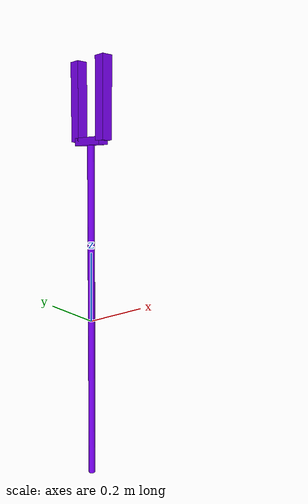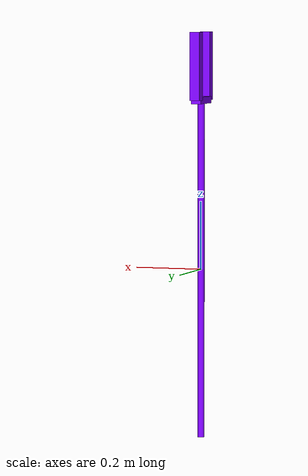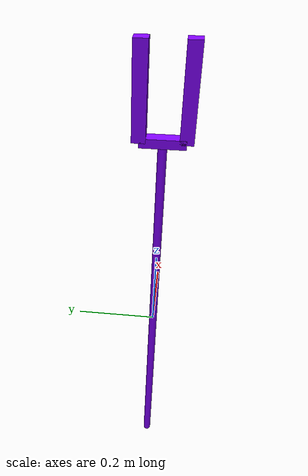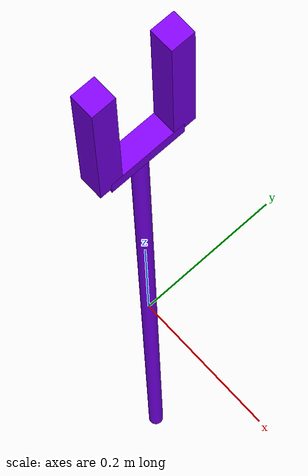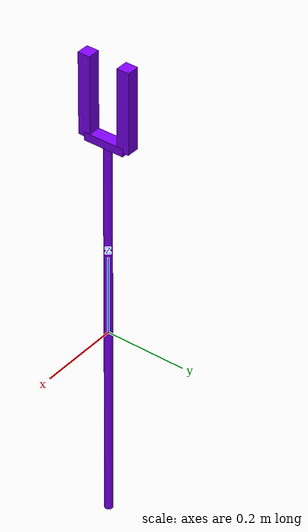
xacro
<?xml version="1.0"?>
<robot name="dynamic_arm" xmlns:xacro="http://ros.org/wiki/xacro">

    <material name="purple">
        <color rgba="0.5 0 1 1" />
    </material>
    <!-- Arm Link -->
    <link name="arm_link">
        <visual>
            <geometry>
                <cylinder radius="0.01" length="1.0" />
            </geometry>
            <origin xyz="0 0 0" />
            <material name="purple" />
        </visual>
    </link>

    <!-- Hand Link -->
    <link name="hand">
        <visual>
            <geometry>
                <box size="0.03 0.1 0.02" />
            </geometry>
            <origin xyz="0 0 0" />
            <material name="purple" />
        </visual>
        <collision>
            <geometry>
                <box size="0.03 0.1 0.02" />
            </geometry>
        </collision>
    </link>

    <!-- Joint between Arm and Hand -->
    <joint name="arm_hand_joint" type="fixed">
        <parent link="arm_link" />
        <child link="hand" />
        <origin xyz="0.0 0.0 0.5" />
    </joint>

    <!-- Left Finger Link -->
    <link name="left_finger">
        <visual>
            <geometry>
                <box size="0.03 0.03 0.2" />
            </geometry>
            <origin xyz="0 0.0 0.0" />
            <material name="purple" />
        </visual>
        <inertial name="left_finger_inertial">
            <mass value="0.001" />
            <inertia ixx="0.1" ixy="0" ixz="0" iyy="0.1" iyz="0" izz="0.1" />
        </inertial>
        <collision>
            <geometry>
                <box size="0.03 0.03 0.2" />
            </geometry>
        </collision>
    </link>

    <!-- Right Finger Link -->
    <link name="right_finger">
        <visual>
            <geometry>
                <box size="0.03 0.03 0.2" />
            </geometry>
            <origin xyz="0 0.0 0.0" />
            <material name="purple" />
        </visual>
        <inertial name="right_finger_inertial">
            <mass value="0.001" />
            <inertia ixx="0.1" ixy="0" ixz="0" iyy="0.1" iyz="0" izz="0.1" />
        </inertial>
        <collision>
            <geometry>
                <box size="0.03 0.03 0.2" />
            </geometry>
        </collision>
    </link>

    <!-- Prismatic Joint for Left Finger -->
    <joint name="left_finger_joint" type="prismatic">
        <parent link="hand" />
        <child link="left_finger" />
        <origin xyz="0 0.05 0.10" />
        <axis xyz="0 1 0" />
        <limit lower="-0.03" upper="0.05" effort="10" velocity="1" />
    </joint>

    <!-- Prismatic Joint for Right Finger -->
    <joint name="right_finger_joint" type="prismatic">
        <parent link="hand" />
        <child link="right_finger" />
        <origin xyz="0 -0.05 0.10" />
        <axis xyz="0 -1 0" />
        <limit lower="-0.03" upper="0.05" effort="10" velocity="1" />
        <mimic joint="left_finger_joint" multiplier="1.0" />
    </joint>

    <ros2_control name="GazeboSystem" type="system">
        <hardware>
            <plugin>gz_ros2_control/GazeboSimSystem</plugin>
        </hardware>
        <joint name="left_finger_joint">
            <command_interface name="position" />
            <state_interface name="position">
                <param name="initial_value">0.02</param>
            </state_interface>
            <state_interface name="velocity" />
            <state_interface name="effort" />
        </joint>
        <joint name="right_finger_joint">
            <param name="mimic">left_finger_joint</param>
            <param name="multiplier">1</param>
            <command_interface name="position" />
            <state_interface name="position" />
            <state_interface name="velocity" />
            <state_interface name="effort" />
        </joint>
    </ros2_control>

    <gazebo>
        <plugin filename="/opt/ros/iron/lib/libgz_ros2_control-system.so"
            name="gz_ros2_control::GazeboSimROS2ControlPlugin">
            <parameters>$(find position_control)/config/gripper_controller.yaml</parameters>
        </plugin>
    </gazebo>
</robot>
